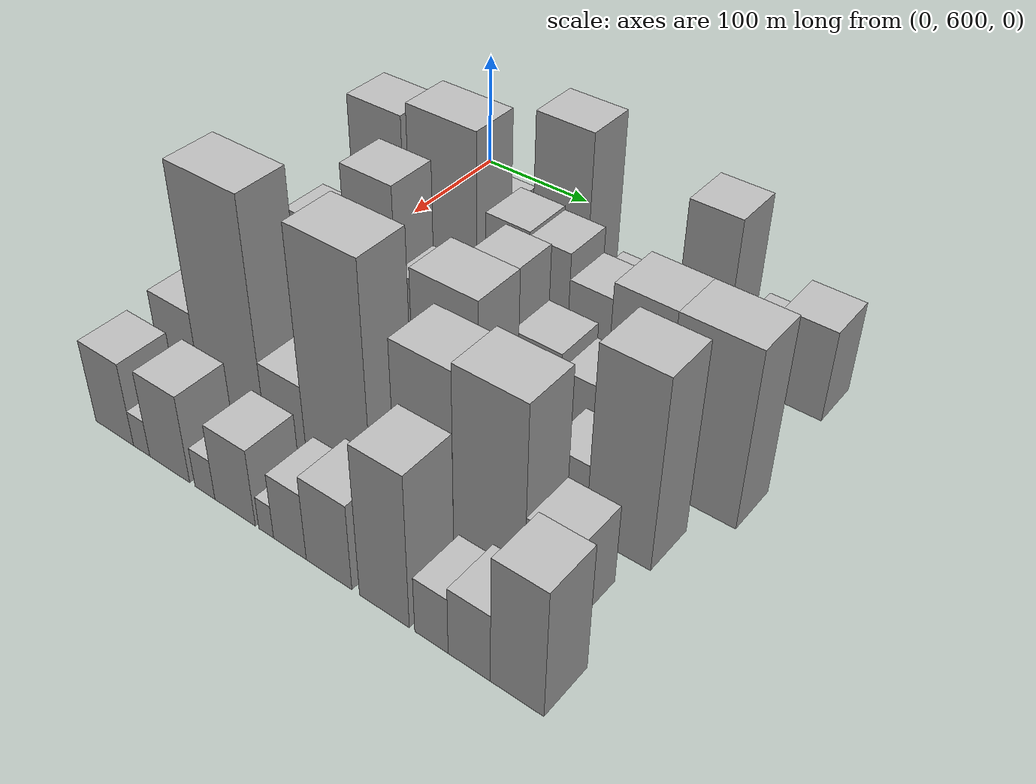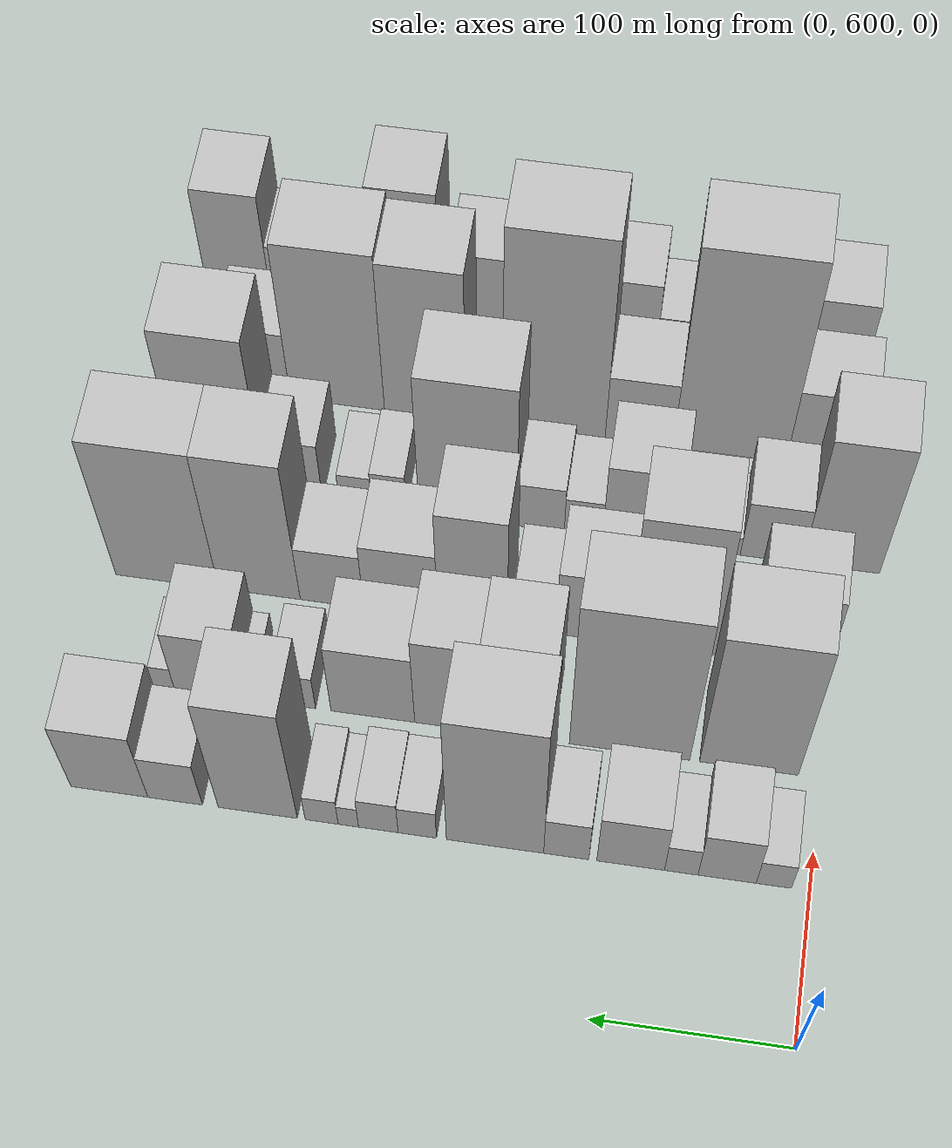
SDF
<sdf version="1.6">
 <world name="default">
  <model name="building_42">
   <static>1</static>
   <pose>100.0000 618.0073 0 0.000000 0.000000 0.000000</pose>
   <link name="link">
    <pose>0 0 15.00 0 0 0</pose>
    <collision name="collision"><geometry><box><size>40.0000 17.5100 30.0000</size></box></geometry></collision>
    <visual name="visual">
     <cast_shadows>0</cast_shadows>
     <geometry><box><size>40.0000 17.5100 30.0000</size></box></geometry>
     <material>
      <script>
       <uri>model://HANNAS_wall/materials/scripts</uri>
       <uri>model://HANNAS_wall/materials/textures</uri>
       <name>vrc/HANNAS_wall</name>
      </script>
     </material>
    </visual>
   </link>
  </model>
  <model name="building_43">
   <static>1</static>
   <pose>100.0000 641.1890 0 0.000000 0.000000 0.000000</pose>
   <link name="link">
    <pose>0 0 27.00 0 0 0</pose>
    <collision name="collision"><geometry><box><size>40.0000 28.8534 54.0000</size></box></geometry></collision>
    <visual name="visual">
     <cast_shadows>0</cast_shadows>
     <geometry><box><size>40.0000 28.8534 54.0000</size></box></geometry>
     <material>
      <script>
       <uri>model://HANNAS_wall/materials/scripts</uri>
       <uri>model://HANNAS_wall/materials/textures</uri>
       <name>vrc/HANNAS_wall</name>
      </script>
     </material>
    </visual>
   </link>
  </model>
  <model name="building_44">
   <static>1</static>
   <pose>100.0000 663.9546 0 0.000000 0.000000 0.000000</pose>
   <link name="link">
    <pose>0 0 16.50 0 0 0</pose>
    <collision name="collision"><geometry><box><size>40.0000 16.6778 33.0000</size></box></geometry></collision>
    <visual name="visual">
     <cast_shadows>0</cast_shadows>
     <geometry><box><size>40.0000 16.6778 33.0000</size></box></geometry>
     <material>
      <script>
       <uri>model://HANNAS_wall/materials/scripts</uri>
       <uri>model://HANNAS_wall/materials/textures</uri>
       <name>vrc/HANNAS_wall</name>
      </script>
     </material>
    </visual>
   </link>
  </model>
  <model name="building_45">
   <static>1</static>
   <pose>100.0000 689.1962 0 0.000000 0.000000 0.000000</pose>
   <link name="link">
    <pose>0 0 28.50 0 0 0</pose>
    <collision name="collision"><geometry><box><size>40.0000 33.8055 57.0000</size></box></geometry></collision>
    <visual name="visual">
     <cast_shadows>0</cast_shadows>
     <geometry><box><size>40.0000 33.8055 57.0000</size></box></geometry>
     <material>
      <script>
       <uri>model://HANNAS_wall/materials/scripts</uri>
       <uri>model://HANNAS_wall/materials/textures</uri>
       <name>vrc/HANNAS_wall</name>
      </script>
     </material>
    </visual>
   </link>
  </model>
  <model name="building_46">
   <static>1</static>
   <pose>100.0000 721.4115 0 0.000000 0.000000 0.000000</pose>
   <link name="link">
    <pose>0 0 22.50 0 0 0</pose>
    <collision name="collision"><geometry><box><size>40.0000 22.6251 45.0000</size></box></geometry></collision>
    <visual name="visual">
     <cast_shadows>0</cast_shadows>
     <geometry><box><size>40.0000 22.6251 45.0000</size></box></geometry>
     <material>
      <script>
       <uri>model://HANNAS_wall/materials/scripts</uri>
       <uri>model://HANNAS_wall/materials/textures</uri>
       <name>vrc/HANNAS_wall</name>
      </script>
     </material>
    </visual>
   </link>
  </model>
  <model name="building_47">
   <static>1</static>
   <pose>100.0000 757.1691 0 0.000000 0.000000 0.000000</pose>
   <link name="link">
    <pose>0 0 75.00 0 0 0</pose>
    <collision name="collision"><geometry><box><size>40.0000 48.8902 150.0000</size></box></geometry></collision>
    <visual name="visual">
     <cast_shadows>0</cast_shadows>
     <geometry><box><size>40.0000 48.8902 150.0000</size></box></geometry>
     <material>
      <script>
       <uri>model://HANNAS_wall/materials/scripts</uri>
       <uri>model://HANNAS_wall/materials/textures</uri>
       <name>vrc/HANNAS_wall</name>
      </script>
     </material>
    </visual>
   </link>
  </model>
  <model name="building_48">
   <static>1</static>
   <pose>100.0000 796.2961 0 0.000000 0.000000 0.000000</pose>
   <link name="link">
    <pose>0 0 16.50 0 0 0</pose>
    <collision name="collision"><geometry><box><size>40.0000 19.3638 33.0000</size></box></geometry></collision>
    <visual name="visual">
     <cast_shadows>0</cast_shadows>
     <geometry><box><size>40.0000 19.3638 33.0000</size></box></geometry>
     <material>
      <script>
       <uri>model://HANNAS_wall/materials/scripts</uri>
       <uri>model://HANNAS_wall/materials/textures</uri>
       <name>vrc/HANNAS_wall</name>
      </script>
     </material>
    </visual>
   </link>
  </model>
  <model name="building_49">
   <static>1</static>
   <pose>100.0000 816.0017 0 0.000000 0.000000 0.000000</pose>
   <link name="link">
    <pose>0 0 18.00 0 0 0</pose>
    <collision name="collision"><geometry><box><size>40.0000 20.0474 36.0000</size></box></geometry></collision>
    <visual name="visual">
     <cast_shadows>0</cast_shadows>
     <geometry><box><size>40.0000 20.0474 36.0000</size></box></geometry>
     <material>
      <script>
       <uri>model://HANNAS_wall/materials/scripts</uri>
       <uri>model://HANNAS_wall/materials/textures</uri>
       <name>vrc/HANNAS_wall</name>
      </script>
     </material>
    </visual>
   </link>
  </model>
  <model name="building_50">
   <static>1</static>
   <pose>100.0000 831.1819 0 0.000000 0.000000 0.000000</pose>
   <link name="link">
    <pose>0 0 12.00 0 0 0</pose>
    <collision name="collision"><geometry><box><size>40.0000 10.3131 24.0000</size></box></geometry></collision>
    <visual name="visual">
     <cast_shadows>0</cast_shadows>
     <geometry><box><size>40.0000 10.3131 24.0000</size></box></geometry>
     <material>
      <script>
       <uri>model://HANNAS_wall/materials/scripts</uri>
       <uri>model://HANNAS_wall/materials/textures</uri>
       <name>vrc/HANNAS_wall</name>
      </script>
     </material>
    </visual>
   </link>
  </model>
  <model name="building_51">
   <static>1</static>
   <pose>100.0000 844.7251 0 0.000000 0.000000 0.000000</pose>
   <link name="link">
    <pose>0 0 15.00 0 0 0</pose>
    <collision name="collision"><geometry><box><size>40.0000 16.7733 30.0000</size></box></geometry></collision>
    <visual name="visual">
     <cast_shadows>0</cast_shadows>
     <geometry><box><size>40.0000 16.7733 30.0000</size></box></geometry>
     <material>
      <script>
       <uri>model://HANNAS_wall/materials/scripts</uri>
       <uri>model://HANNAS_wall/materials/textures</uri>
       <name>vrc/HANNAS_wall</name>
      </script>
     </material>
    </visual>
   </link>
  </model>
  <model name="building_52">
   <static>1</static>
   <pose>100.0000 877.3038 0 0.000000 0.000000 0.000000</pose>
   <link name="link">
    <pose>0 0 64.50 0 0 0</pose>
    <collision name="collision"><geometry><box><size>40.0000 40.3842 129.0000</size></box></geometry></collision>
    <visual name="visual">
     <cast_shadows>0</cast_shadows>
     <geometry><box><size>40.0000 40.3842 129.0000</size></box></geometry>
     <material>
      <script>
       <uri>model://HANNAS_wall/materials/scripts</uri>
       <uri>model://HANNAS_wall/materials/textures</uri>
       <name>vrc/HANNAS_wall</name>
      </script>
     </material>
    </visual>
   </link>
  </model>
  <model name="building_53">
   <static>1</static>
   <pose>100.0000 919.4851 0 0.000000 0.000000 0.000000</pose>
   <link name="link">
    <pose>0 0 25.50 0 0 0</pose>
    <collision name="collision"><geometry><box><size>40.0000 27.9783 51.0000</size></box></geometry></collision>
    <visual name="visual">
     <cast_shadows>0</cast_shadows>
     <geometry><box><size>40.0000 27.9783 51.0000</size></box></geometry>
     <material>
      <script>
       <uri>model://HANNAS_wall/materials/scripts</uri>
       <uri>model://HANNAS_wall/materials/textures</uri>
       <name>vrc/HANNAS_wall</name>
      </script>
     </material>
    </visual>
   </link>
  </model>
  <model name="building_54">
   <static>1</static>
   <pose>100.0000 953.2987 0 0.000000 0.000000 0.000000</pose>
   <link name="link">
    <pose>0 0 37.50 0 0 0</pose>
    <collision name="collision"><geometry><box><size>40.0000 39.6489 75.0000</size></box></geometry></collision>
    <visual name="visual">
     <cast_shadows>0</cast_shadows>
     <geometry><box><size>40.0000 39.6489 75.0000</size></box></geometry>
     <material>
      <script>
       <uri>model://HANNAS_wall/materials/scripts</uri>
       <uri>model://HANNAS_wall/materials/textures</uri>
       <name>vrc/HANNAS_wall</name>
      </script>
     </material>
    </visual>
   </link>
  </model>
  <model name="building_93">
   <static>1</static>
   <pose>160.0000 636.2026 0 0.000000 0.000000 0.000000</pose>
   <link name="link">
    <pose>0 0 73.50 0 0 0</pose>
    <collision name="collision"><geometry><box><size>40.0000 50.1381 147.0000</size></box></geometry></collision>
    <visual name="visual">
     <cast_shadows>0</cast_shadows>
     <geometry><box><size>40.0000 50.1381 147.0000</size></box></geometry>
     <material>
      <script>
       <uri>model://HANNAS_wall/materials/scripts</uri>
       <uri>model://HANNAS_wall/materials/textures</uri>
       <name>vrc/HANNAS_wall</name>
      </script>
     </material>
    </visual>
   </link>
  </model>
  <model name="building_94">
   <static>1</static>
   <pose>160.0000 697.0706 0 0.000000 0.000000 0.000000</pose>
   <link name="link">
    <pose>0 0 79.50 0 0 0</pose>
    <collision name="collision"><geometry><box><size>40.0000 61.5979 159.0000</size></box></geometry></collision>
    <visual name="visual">
     <cast_shadows>0</cast_shadows>
     <geometry><box><size>40.0000 61.5979 159.0000</size></box></geometry>
     <material>
      <script>
       <uri>model://HANNAS_wall/materials/scripts</uri>
       <uri>model://HANNAS_wall/materials/textures</uri>
       <name>vrc/HANNAS_wall</name>
      </script>
     </material>
    </visual>
   </link>
  </model>
  <model name="building_95">
   <static>1</static>
   <pose>160.0000 754.8057 0 0.000000 0.000000 0.000000</pose>
   <link name="link">
    <pose>0 0 49.50 0 0 0</pose>
    <collision name="collision"><geometry><box><size>40.0000 37.8722 99.0000</size></box></geometry></collision>
    <visual name="visual">
     <cast_shadows>0</cast_shadows>
     <geometry><box><size>40.0000 37.8722 99.0000</size></box></geometry>
     <material>
      <script>
       <uri>model://HANNAS_wall/materials/scripts</uri>
       <uri>model://HANNAS_wall/materials/textures</uri>
       <name>vrc/HANNAS_wall</name>
      </script>
     </material>
    </visual>
   </link>
  </model>
  <model name="building_96">
   <static>1</static>
   <pose>160.0000 790.6017 0 0.000000 0.000000 0.000000</pose>
   <link name="link">
    <pose>0 0 48.00 0 0 0</pose>
    <collision name="collision"><geometry><box><size>40.0000 33.7200 96.0000</size></box></geometry></collision>
    <visual name="visual">
     <cast_shadows>0</cast_shadows>
     <geometry><box><size>40.0000 33.7200 96.0000</size></box></geometry>
     <material>
      <script>
       <uri>model://HANNAS_wall/materials/scripts</uri>
       <uri>model://HANNAS_wall/materials/textures</uri>
       <name>vrc/HANNAS_wall</name>
      </script>
     </material>
    </visual>
   </link>
  </model>
  <model name="building_97">
   <static>1</static>
   <pose>160.0000 829.1839 0 0.000000 0.000000 0.000000</pose>
   <link name="link">
    <pose>0 0 37.50 0 0 0</pose>
    <collision name="collision"><geometry><box><size>40.0000 43.4444 75.0000</size></box></geometry></collision>
    <visual name="visual">
     <cast_shadows>0</cast_shadows>
     <geometry><box><size>40.0000 43.4444 75.0000</size></box></geometry>
     <material>
      <script>
       <uri>model://HANNAS_wall/materials/scripts</uri>
       <uri>model://HANNAS_wall/materials/textures</uri>
       <name>vrc/HANNAS_wall</name>
      </script>
     </material>
    </visual>
   </link>
  </model>
  <model name="building_98">
   <static>1</static>
   <pose>160.0000 869.4448 0 0.000000 0.000000 0.000000</pose>
   <link name="link">
    <pose>0 0 18.00 0 0 0</pose>
    <collision name="collision"><geometry><box><size>40.0000 21.0774 36.0000</size></box></geometry></collision>
    <visual name="visual">
     <cast_shadows>0</cast_shadows>
     <geometry><box><size>40.0000 21.0774 36.0000</size></box></geometry>
     <material>
      <script>
       <uri>model://HANNAS_wall/materials/scripts</uri>
       <uri>model://HANNAS_wall/materials/textures</uri>
       <name>vrc/HANNAS_wall</name>
      </script>
     </material>
    </visual>
   </link>
  </model>
  <model name="building_99">
   <static>1</static>
   <pose>160.0000 893.3286 0 0.000000 0.000000 0.000000</pose>
   <link name="link">
    <pose>0 0 10.50 0 0 0</pose>
    <collision name="collision"><geometry><box><size>40.0000 8.6901 21.0000</size></box></geometry></collision>
    <visual name="visual">
     <cast_shadows>0</cast_shadows>
     <geometry><box><size>40.0000 8.6901 21.0000</size></box></geometry>
     <material>
      <script>
       <uri>model://HANNAS_wall/materials/scripts</uri>
       <uri>model://HANNAS_wall/materials/textures</uri>
       <name>vrc/HANNAS_wall</name>
      </script>
     </material>
    </visual>
   </link>
  </model>
  <model name="building_100">
   <static>1</static>
   <pose>160.0000 915.2253 0 0.000000 0.000000 0.000000</pose>
   <link name="link">
    <pose>0 0 33.00 0 0 0</pose>
    <collision name="collision"><geometry><box><size>40.0000 35.1033 66.0000</size></box></geometry></collision>
    <visual name="visual">
     <cast_shadows>0</cast_shadows>
     <geometry><box><size>40.0000 35.1033 66.0000</size></box></geometry>
     <material>
      <script>
       <uri>model://HANNAS_wall/materials/scripts</uri>
       <uri>model://HANNAS_wall/materials/textures</uri>
       <name>vrc/HANNAS_wall</name>
      </script>
     </material>
    </visual>
   </link>
  </model>
  <model name="building_101">
   <static>1</static>
   <pose>160.0000 938.3614 0 0.000000 0.000000 0.000000</pose>
   <link name="link">
    <pose>0 0 12.00 0 0 0</pose>
    <collision name="collision"><geometry><box><size>40.0000 11.1689 24.0000</size></box></geometry></collision>
    <visual name="visual">
     <cast_shadows>0</cast_shadows>
     <geometry><box><size>40.0000 11.1689 24.0000</size></box></geometry>
     <material>
      <script>
       <uri>model://HANNAS_wall/materials/scripts</uri>
       <uri>model://HANNAS_wall/materials/textures</uri>
       <name>vrc/HANNAS_wall</name>
      </script>
     </material>
    </visual>
   </link>
  </model>
  <model name="building_145">
   <static>1</static>
   <pose>220.0000 621.5087 0 0.000000 0.000000 0.000000</pose>
   <link name="link">
    <pose>0 0 39.00 0 0 0</pose>
    <collision name="collision"><geometry><box><size>40.0000 40.9243 78.0000</size></box></geometry></collision>
    <visual name="visual">
     <cast_shadows>0</cast_shadows>
     <geometry><box><size>40.0000 40.9243 78.0000</size></box></geometry>
     <material>
      <script>
       <uri>model://HANNAS_wall/materials/scripts</uri>
       <uri>model://HANNAS_wall/materials/textures</uri>
       <name>vrc/HANNAS_wall</name>
      </script>
     </material>
    </visual>
   </link>
  </model>
  <model name="building_146">
   <static>1</static>
   <pose>220.0000 650.7561 0 0.000000 0.000000 0.000000</pose>
   <link name="link">
    <pose>0 0 15.00 0 0 0</pose>
    <collision name="collision"><geometry><box><size>40.0000 17.5705 30.0000</size></box></geometry></collision>
    <visual name="visual">
     <cast_shadows>0</cast_shadows>
     <geometry><box><size>40.0000 17.5705 30.0000</size></box></geometry>
     <material>
      <script>
       <uri>model://HANNAS_wall/materials/scripts</uri>
       <uri>model://HANNAS_wall/materials/textures</uri>
       <name>vrc/HANNAS_wall</name>
      </script>
     </material>
    </visual>
   </link>
  </model>
  <model name="building_147">
   <static>1</static>
   <pose>220.0000 682.3971 0 0.000000 0.000000 0.000000</pose>
   <link name="link">
    <pose>0 0 69.00 0 0 0</pose>
    <collision name="collision"><geometry><box><size>40.0000 45.7116 138.0000</size></box></geometry></collision>
    <visual name="visual">
     <cast_shadows>0</cast_shadows>
     <geometry><box><size>40.0000 45.7116 138.0000</size></box></geometry>
     <material>
      <script>
       <uri>model://HANNAS_wall/materials/scripts</uri>
       <uri>model://HANNAS_wall/materials/textures</uri>
       <name>vrc/HANNAS_wall</name>
      </script>
     </material>
    </visual>
   </link>
  </model>
  <model name="building_148">
   <static>1</static>
   <pose>220.0000 724.0211 0 0.000000 0.000000 0.000000</pose>
   <link name="link">
    <pose>0 0 34.50 0 0 0</pose>
    <collision name="collision"><geometry><box><size>40.0000 37.5365 69.0000</size></box></geometry></collision>
    <visual name="visual">
     <cast_shadows>0</cast_shadows>
     <geometry><box><size>40.0000 37.5365 69.0000</size></box></geometry>
     <material>
      <script>
       <uri>model://HANNAS_wall/materials/scripts</uri>
       <uri>model://HANNAS_wall/materials/textures</uri>
       <name>vrc/HANNAS_wall</name>
      </script>
     </material>
    </visual>
   </link>
  </model>
  <model name="building_149">
   <static>1</static>
   <pose>220.0000 754.1148 0 0.000000 0.000000 0.000000</pose>
   <link name="link">
    <pose>0 0 21.00 0 0 0</pose>
    <collision name="collision"><geometry><box><size>40.0000 22.6509 42.0000</size></box></geometry></collision>
    <visual name="visual">
     <cast_shadows>0</cast_shadows>
     <geometry><box><size>40.0000 22.6509 42.0000</size></box></geometry>
     <material>
      <script>
       <uri>model://HANNAS_wall/materials/scripts</uri>
       <uri>model://HANNAS_wall/materials/textures</uri>
       <name>vrc/HANNAS_wall</name>
      </script>
     </material>
    </visual>
   </link>
  </model>
  <model name="building_150">
   <static>1</static>
   <pose>220.0000 786.8052 0 0.000000 0.000000 0.000000</pose>
   <link name="link">
    <pose>0 0 57.00 0 0 0</pose>
    <collision name="collision"><geometry><box><size>40.0000 36.7300 114.0000</size></box></geometry></collision>
    <visual name="visual">
     <cast_shadows>0</cast_shadows>
     <geometry><box><size>40.0000 36.7300 114.0000</size></box></geometry>
     <material>
      <script>
       <uri>model://HANNAS_wall/materials/scripts</uri>
       <uri>model://HANNAS_wall/materials/textures</uri>
       <name>vrc/HANNAS_wall</name>
      </script>
     </material>
    </visual>
   </link>
  </model>
  <model name="building_151">
   <static>1</static>
   <pose>220.0000 824.7797 0 0.000000 0.000000 0.000000</pose>
   <link name="link">
    <pose>0 0 34.50 0 0 0</pose>
    <collision name="collision"><geometry><box><size>40.0000 39.2189 69.0000</size></box></geometry></collision>
    <visual name="visual">
     <cast_shadows>0</cast_shadows>
     <geometry><box><size>40.0000 39.2189 69.0000</size></box></geometry>
     <material>
      <script>
       <uri>model://HANNAS_wall/materials/scripts</uri>
       <uri>model://HANNAS_wall/materials/textures</uri>
       <name>vrc/HANNAS_wall</name>
      </script>
     </material>
    </visual>
   </link>
  </model>
  <model name="building_152">
   <static>1</static>
   <pose>220.0000 861.2721 0 0.000000 0.000000 0.000000</pose>
   <link name="link">
    <pose>0 0 28.50 0 0 0</pose>
    <collision name="collision"><geometry><box><size>40.0000 33.7660 57.0000</size></box></geometry></collision>
    <visual name="visual">
     <cast_shadows>0</cast_shadows>
     <geometry><box><size>40.0000 33.7660 57.0000</size></box></geometry>
     <material>
      <script>
       <uri>model://HANNAS_wall/materials/scripts</uri>
       <uri>model://HANNAS_wall/materials/textures</uri>
       <name>vrc/HANNAS_wall</name>
      </script>
     </material>
    </visual>
   </link>
  </model>
  <model name="building_153">
   <static>1</static>
   <pose>220.0000 899.9863 0 0.000000 0.000000 0.000000</pose>
   <link name="link">
    <pose>0 0 70.50 0 0 0</pose>
    <collision name="collision"><geometry><box><size>40.0000 43.6624 141.0000</size></box></geometry></collision>
    <visual name="visual">
     <cast_shadows>0</cast_shadows>
     <geometry><box><size>40.0000 43.6624 141.0000</size></box></geometry>
     <material>
      <script>
       <uri>model://HANNAS_wall/materials/scripts</uri>
       <uri>model://HANNAS_wall/materials/textures</uri>
       <name>vrc/HANNAS_wall</name>
      </script>
     </material>
    </visual>
   </link>
  </model>
  <model name="building_154">
   <static>1</static>
   <pose>220.0000 949.4680 0 0.000000 0.000000 0.000000</pose>
   <link name="link">
    <pose>0 0 70.50 0 0 0</pose>
    <collision name="collision"><geometry><box><size>40.0000 55.3010 141.0000</size></box></geometry></collision>
    <visual name="visual">
     <cast_shadows>0</cast_shadows>
     <geometry><box><size>40.0000 55.3010 141.0000</size></box></geometry>
     <material>
      <script>
       <uri>model://HANNAS_wall/materials/scripts</uri>
       <uri>model://HANNAS_wall/materials/textures</uri>
       <name>vrc/HANNAS_wall</name>
      </script>
     </material>
    </visual>
   </link>
  </model>
  <model name="building_198">
   <static>1</static>
   <pose>280.0000 599.1613 0 0.000000 0.000000 0.000000</pose>
   <link name="link">
    <pose>0 0 64.50 0 0 0</pose>
    <collision name="collision"><geometry><box><size>40.0000 40.9980 129.0000</size></box></geometry></collision>
    <visual name="visual">
     <cast_shadows>0</cast_shadows>
     <geometry><box><size>40.0000 40.9980 129.0000</size></box></geometry>
     <material>
      <script>
       <uri>model://HANNAS_wall/materials/scripts</uri>
       <uri>model://HANNAS_wall/materials/textures</uri>
       <name>vrc/HANNAS_wall</name>
      </script>
     </material>
    </visual>
   </link>
  </model>
  <model name="building_199">
   <static>1</static>
   <pose>280.0000 636.0744 0 0.000000 0.000000 0.000000</pose>
   <link name="link">
    <pose>0 0 28.50 0 0 0</pose>
    <collision name="collision"><geometry><box><size>40.0000 32.8284 57.0000</size></box></geometry></collision>
    <visual name="visual">
     <cast_shadows>0</cast_shadows>
     <geometry><box><size>40.0000 32.8284 57.0000</size></box></geometry>
     <material>
      <script>
       <uri>model://HANNAS_wall/materials/scripts</uri>
       <uri>model://HANNAS_wall/materials/textures</uri>
       <name>vrc/HANNAS_wall</name>
      </script>
     </material>
    </visual>
   </link>
  </model>
  <model name="building_200">
   <static>1</static>
   <pose>280.0000 656.9201 0 0.000000 0.000000 0.000000</pose>
   <link name="link">
    <pose>0 0 9.00 0 0 0</pose>
    <collision name="collision"><geometry><box><size>40.0000 8.8629 18.0000</size></box></geometry></collision>
    <visual name="visual">
     <cast_shadows>0</cast_shadows>
     <geometry><box><size>40.0000 8.8629 18.0000</size></box></geometry>
     <material>
      <script>
       <uri>model://HANNAS_wall/materials/scripts</uri>
       <uri>model://HANNAS_wall/materials/textures</uri>
       <name>vrc/HANNAS_wall</name>
      </script>
     </material>
    </visual>
   </link>
  </model>
  <model name="building_201">
   <static>1</static>
   <pose>280.0000 670.2073 0 0.000000 0.000000 0.000000</pose>
   <link name="link">
    <pose>0 0 16.50 0 0 0</pose>
    <collision name="collision"><geometry><box><size>40.0000 17.7117 33.0000</size></box></geometry></collision>
    <visual name="visual">
     <cast_shadows>0</cast_shadows>
     <geometry><box><size>40.0000 17.7117 33.0000</size></box></geometry>
     <material>
      <script>
       <uri>model://HANNAS_wall/materials/scripts</uri>
       <uri>model://HANNAS_wall/materials/textures</uri>
       <name>vrc/HANNAS_wall</name>
      </script>
     </material>
    </visual>
   </link>
  </model>
  <model name="building_202">
   <static>1</static>
   <pose>280.0000 705.9889 0 0.000000 0.000000 0.000000</pose>
   <link name="link">
    <pose>0 0 37.50 0 0 0</pose>
    <collision name="collision"><geometry><box><size>40.0000 39.8515 75.0000</size></box></geometry></collision>
    <visual name="visual">
     <cast_shadows>0</cast_shadows>
     <geometry><box><size>40.0000 39.8515 75.0000</size></box></geometry>
     <material>
      <script>
       <uri>model://HANNAS_wall/materials/scripts</uri>
       <uri>model://HANNAS_wall/materials/textures</uri>
       <name>vrc/HANNAS_wall</name>
      </script>
     </material>
    </visual>
   </link>
  </model>
  <model name="building_203">
   <static>1</static>
   <pose>280.0000 736.2153 0 0.000000 0.000000 0.000000</pose>
   <link name="link">
    <pose>0 0 18.00 0 0 0</pose>
    <collision name="collision"><geometry><box><size>40.0000 20.6012 36.0000</size></box></geometry></collision>
    <visual name="visual">
     <cast_shadows>0</cast_shadows>
     <geometry><box><size>40.0000 20.6012 36.0000</size></box></geometry>
     <material>
      <script>
       <uri>model://HANNAS_wall/materials/scripts</uri>
       <uri>model://HANNAS_wall/materials/textures</uri>
       <name>vrc/HANNAS_wall</name>
      </script>
     </material>
    </visual>
   </link>
  </model>
  <model name="building_204">
   <static>1</static>
   <pose>280.0000 759.2845 0 0.000000 0.000000 0.000000</pose>
   <link name="link">
    <pose>0 0 22.50 0 0 0</pose>
    <collision name="collision"><geometry><box><size>40.0000 25.5373 45.0000</size></box></geometry></collision>
    <visual name="visual">
     <cast_shadows>0</cast_shadows>
     <geometry><box><size>40.0000 25.5373 45.0000</size></box></geometry>
     <material>
      <script>
       <uri>model://HANNAS_wall/materials/scripts</uri>
       <uri>model://HANNAS_wall/materials/textures</uri>
       <name>vrc/HANNAS_wall</name>
      </script>
     </material>
    </visual>
   </link>
  </model>
  <model name="building_205">
   <static>1</static>
   <pose>280.0000 798.4730 0 0.000000 0.000000 0.000000</pose>
   <link name="link">
    <pose>0 0 69.00 0 0 0</pose>
    <collision name="collision"><geometry><box><size>40.0000 52.8398 138.0000</size></box></geometry></collision>
    <visual name="visual">
     <cast_shadows>0</cast_shadows>
     <geometry><box><size>40.0000 52.8398 138.0000</size></box></geometry>
     <material>
      <script>
       <uri>model://HANNAS_wall/materials/scripts</uri>
       <uri>model://HANNAS_wall/materials/textures</uri>
       <name>vrc/HANNAS_wall</name>
      </script>
     </material>
    </visual>
   </link>
  </model>
  <model name="building_206">
   <static>1</static>
   <pose>280.0000 841.2445 0 0.000000 0.000000 0.000000</pose>
   <link name="link">
    <pose>0 0 18.00 0 0 0</pose>
    <collision name="collision"><geometry><box><size>40.0000 18.7033 36.0000</size></box></geometry></collision>
    <visual name="visual">
     <cast_shadows>0</cast_shadows>
     <geometry><box><size>40.0000 18.7033 36.0000</size></box></geometry>
     <material>
      <script>
       <uri>model://HANNAS_wall/materials/scripts</uri>
       <uri>model://HANNAS_wall/materials/textures</uri>
       <name>vrc/HANNAS_wall</name>
      </script>
     </material>
    </visual>
   </link>
  </model>
  <model name="building_207">
   <static>1</static>
   <pose>280.0000 859.4446 0 0.000000 0.000000 0.000000</pose>
   <link name="link">
    <pose>0 0 15.00 0 0 0</pose>
    <collision name="collision"><geometry><box><size>40.0000 17.6968 30.0000</size></box></geometry></collision>
    <visual name="visual">
     <cast_shadows>0</cast_shadows>
     <geometry><box><size>40.0000 17.6968 30.0000</size></box></geometry>
     <material>
      <script>
       <uri>model://HANNAS_wall/materials/scripts</uri>
       <uri>model://HANNAS_wall/materials/textures</uri>
       <name>vrc/HANNAS_wall</name>
      </script>
     </material>
    </visual>
   </link>
  </model>
  <model name="building_208">
   <static>1</static>
   <pose>280.0000 892.5521 0 0.000000 0.000000 0.000000</pose>
   <link name="link">
    <pose>0 0 28.50 0 0 0</pose>
    <collision name="collision"><geometry><box><size>40.0000 30.5182 57.0000</size></box></geometry></collision>
    <visual name="visual">
     <cast_shadows>0</cast_shadows>
     <geometry><box><size>40.0000 30.5182 57.0000</size></box></geometry>
     <material>
      <script>
       <uri>model://HANNAS_wall/materials/scripts</uri>
       <uri>model://HANNAS_wall/materials/textures</uri>
       <name>vrc/HANNAS_wall</name>
      </script>
     </material>
    </visual>
   </link>
  </model>
  <model name="building_209">
   <static>1</static>
   <pose>280.0000 931.0610 0 0.000000 0.000000 0.000000</pose>
   <link name="link">
    <pose>0 0 75.00 0 0 0</pose>
    <collision name="collision"><geometry><box><size>40.0000 46.4995 150.0000</size></box></geometry></collision>
    <visual name="visual">
     <cast_shadows>0</cast_shadows>
     <geometry><box><size>40.0000 46.4995 150.0000</size></box></geometry>
     <material>
      <script>
       <uri>model://HANNAS_wall/materials/scripts</uri>
       <uri>model://HANNAS_wall/materials/textures</uri>
       <name>vrc/HANNAS_wall</name>
      </script>
     </material>
    </visual>
   </link>
  </model>
  <model name="building_254">
   <static>1</static>
   <pose>340.0000 613.1773 0 0.000000 0.000000 0.000000</pose>
   <link name="link">
    <pose>0 0 36.00 0 0 0</pose>
    <collision name="collision"><geometry><box><size>40.0000 40.5488 72.0000</size></box></geometry></collision>
    <visual name="visual">
     <cast_shadows>0</cast_shadows>
     <geometry><box><size>40.0000 40.5488 72.0000</size></box></geometry>
     <material>
      <script>
       <uri>model://HANNAS_wall/materials/scripts</uri>
       <uri>model://HANNAS_wall/materials/textures</uri>
       <name>vrc/HANNAS_wall</name>
      </script>
     </material>
    </visual>
   </link>
  </model>
  <model name="building_255">
   <static>1</static>
   <pose>340.0000 664.2156 0 0.000000 0.000000 0.000000</pose>
   <link name="link">
    <pose>0 0 94.50 0 0 0</pose>
    <collision name="collision"><geometry><box><size>40.0000 61.5278 189.0000</size></box></geometry></collision>
    <visual name="visual">
     <cast_shadows>0</cast_shadows>
     <geometry><box><size>40.0000 61.5278 189.0000</size></box></geometry>
     <material>
      <script>
       <uri>model://HANNAS_wall/materials/scripts</uri>
       <uri>model://HANNAS_wall/materials/textures</uri>
       <name>vrc/HANNAS_wall</name>
      </script>
     </material>
    </visual>
   </link>
  </model>
  <model name="building_256">
   <static>1</static>
   <pose>340.0000 713.5831 0 0.000000 0.000000 0.000000</pose>
   <link name="link">
    <pose>0 0 31.50 0 0 0</pose>
    <collision name="collision"><geometry><box><size>40.0000 37.2072 63.0000</size></box></geometry></collision>
    <visual name="visual">
     <cast_shadows>0</cast_shadows>
     <geometry><box><size>40.0000 37.2072 63.0000</size></box></geometry>
     <material>
      <script>
       <uri>model://HANNAS_wall/materials/scripts</uri>
       <uri>model://HANNAS_wall/materials/textures</uri>
       <name>vrc/HANNAS_wall</name>
      </script>
     </material>
    </visual>
   </link>
  </model>
  <model name="building_257">
   <static>1</static>
   <pose>340.0000 760.3806 0 0.000000 0.000000 0.000000</pose>
   <link name="link">
    <pose>0 0 93.00 0 0 0</pose>
    <collision name="collision"><geometry><box><size>40.0000 56.3877 186.0000</size></box></geometry></collision>
    <visual name="visual">
     <cast_shadows>0</cast_shadows>
     <geometry><box><size>40.0000 56.3877 186.0000</size></box></geometry>
     <material>
      <script>
       <uri>model://HANNAS_wall/materials/scripts</uri>
       <uri>model://HANNAS_wall/materials/textures</uri>
       <name>vrc/HANNAS_wall</name>
      </script>
     </material>
    </visual>
   </link>
  </model>
  <model name="building_258">
   <static>1</static>
   <pose>340.0000 798.6332 0 0.000000 0.000000 0.000000</pose>
   <link name="link">
    <pose>0 0 18.00 0 0 0</pose>
    <collision name="collision"><geometry><box><size>40.0000 20.1177 36.0000</size></box></geometry></collision>
    <visual name="visual">
     <cast_shadows>0</cast_shadows>
     <geometry><box><size>40.0000 20.1177 36.0000</size></box></geometry>
     <material>
      <script>
       <uri>model://HANNAS_wall/materials/scripts</uri>
       <uri>model://HANNAS_wall/materials/textures</uri>
       <name>vrc/HANNAS_wall</name>
      </script>
     </material>
    </visual>
   </link>
  </model>
  <model name="building_259">
   <static>1</static>
   <pose>340.0000 831.2580 0 0.000000 0.000000 0.000000</pose>
   <link name="link">
    <pose>0 0 70.50 0 0 0</pose>
    <collision name="collision"><geometry><box><size>40.0000 45.1319 141.0000</size></box></geometry></collision>
    <visual name="visual">
     <cast_shadows>0</cast_shadows>
     <geometry><box><size>40.0000 45.1319 141.0000</size></box></geometry>
     <material>
      <script>
       <uri>model://HANNAS_wall/materials/scripts</uri>
       <uri>model://HANNAS_wall/materials/textures</uri>
       <name>vrc/HANNAS_wall</name>
      </script>
     </material>
    </visual>
   </link>
  </model>
  <model name="building_260">
   <static>1</static>
   <pose>340.0000 880.0326 0 0.000000 0.000000 0.000000</pose>
   <link name="link">
    <pose>0 0 73.50 0 0 0</pose>
    <collision name="collision"><geometry><box><size>40.0000 52.4175 147.0000</size></box></geometry></collision>
    <visual name="visual">
     <cast_shadows>0</cast_shadows>
     <geometry><box><size>40.0000 52.4175 147.0000</size></box></geometry>
     <material>
      <script>
       <uri>model://HANNAS_wall/materials/scripts</uri>
       <uri>model://HANNAS_wall/materials/textures</uri>
       <name>vrc/HANNAS_wall</name>
      </script>
     </material>
    </visual>
   </link>
  </model>
  <model name="building_261">
   <static>1</static>
   <pose>340.0000 924.3439 0 0.000000 0.000000 0.000000</pose>
   <link name="link">
    <pose>0 0 31.50 0 0 0</pose>
    <collision name="collision"><geometry><box><size>40.0000 36.2051 63.0000</size></box></geometry></collision>
    <visual name="visual">
     <cast_shadows>0</cast_shadows>
     <geometry><box><size>40.0000 36.2051 63.0000</size></box></geometry>
     <material>
      <script>
       <uri>model://HANNAS_wall/materials/scripts</uri>
       <uri>model://HANNAS_wall/materials/textures</uri>
       <name>vrc/HANNAS_wall</name>
      </script>
     </material>
    </visual>
   </link>
  </model>
  <model name="building_307">
   <static>1</static>
   <pose>400.0000 614.7563 0 0.000000 0.000000 0.000000</pose>
   <link name="link">
    <pose>0 0 34.50 0 0 0</pose>
    <collision name="collision"><geometry><box><size>40.0000 37.9531 69.0000</size></box></geometry></collision>
    <visual name="visual">
     <cast_shadows>0</cast_shadows>
     <geometry><box><size>40.0000 37.9531 69.0000</size></box></geometry>
     <material>
      <script>
       <uri>model://HANNAS_wall/materials/scripts</uri>
       <uri>model://HANNAS_wall/materials/textures</uri>
       <name>vrc/HANNAS_wall</name>
      </script>
     </material>
    </visual>
   </link>
  </model>
  <model name="building_308">
   <static>1</static>
   <pose>400.0000 641.6648 0 0.000000 0.000000 0.000000</pose>
   <link name="link">
    <pose>0 0 15.00 0 0 0</pose>
    <collision name="collision"><geometry><box><size>40.0000 15.8639 30.0000</size></box></geometry></collision>
    <visual name="visual">
     <cast_shadows>0</cast_shadows>
     <geometry><box><size>40.0000 15.8639 30.0000</size></box></geometry>
     <material>
      <script>
       <uri>model://HANNAS_wall/materials/scripts</uri>
       <uri>model://HANNAS_wall/materials/textures</uri>
       <name>vrc/HANNAS_wall</name>
      </script>
     </material>
    </visual>
   </link>
  </model>
  <model name="building_309">
   <static>1</static>
   <pose>400.0000 668.6208 0 0.000000 0.000000 0.000000</pose>
   <link name="link">
    <pose>0 0 36.00 0 0 0</pose>
    <collision name="collision"><geometry><box><size>40.0000 38.0483 72.0000</size></box></geometry></collision>
    <visual name="visual">
     <cast_shadows>0</cast_shadows>
     <geometry><box><size>40.0000 38.0483 72.0000</size></box></geometry>
     <material>
      <script>
       <uri>model://HANNAS_wall/materials/scripts</uri>
       <uri>model://HANNAS_wall/materials/textures</uri>
       <name>vrc/HANNAS_wall</name>
      </script>
     </material>
    </visual>
   </link>
  </model>
  <model name="building_310">
   <static>1</static>
   <pose>400.0000 701.7435 0 0.000000 0.000000 0.000000</pose>
   <link name="link">
    <pose>0 0 16.50 0 0 0</pose>
    <collision name="collision"><geometry><box><size>40.0000 18.1971 33.0000</size></box></geometry></collision>
    <visual name="visual">
     <cast_shadows>0</cast_shadows>
     <geometry><box><size>40.0000 18.1971 33.0000</size></box></geometry>
     <material>
      <script>
       <uri>model://HANNAS_wall/materials/scripts</uri>
       <uri>model://HANNAS_wall/materials/textures</uri>
       <name>vrc/HANNAS_wall</name>
      </script>
     </material>
    </visual>
   </link>
  </model>
  <model name="building_311">
   <static>1</static>
   <pose>400.0000 728.8013 0 0.000000 0.000000 0.000000</pose>
   <link name="link">
    <pose>0 0 31.50 0 0 0</pose>
    <collision name="collision"><geometry><box><size>40.0000 35.9185 63.0000</size></box></geometry></collision>
    <visual name="visual">
     <cast_shadows>0</cast_shadows>
     <geometry><box><size>40.0000 35.9185 63.0000</size></box></geometry>
     <material>
      <script>
       <uri>model://HANNAS_wall/materials/scripts</uri>
       <uri>model://HANNAS_wall/materials/textures</uri>
       <name>vrc/HANNAS_wall</name>
      </script>
     </material>
    </visual>
   </link>
  </model>
  <model name="building_312">
   <static>1</static>
   <pose>400.0000 756.1065 0 0.000000 0.000000 0.000000</pose>
   <link name="link">
    <pose>0 0 13.50 0 0 0</pose>
    <collision name="collision"><geometry><box><size>40.0000 12.6918 27.0000</size></box></geometry></collision>
    <visual name="visual">
     <cast_shadows>0</cast_shadows>
     <geometry><box><size>40.0000 12.6918 27.0000</size></box></geometry>
     <material>
      <script>
       <uri>model://HANNAS_wall/materials/scripts</uri>
       <uri>model://HANNAS_wall/materials/textures</uri>
       <name>vrc/HANNAS_wall</name>
      </script>
     </material>
    </visual>
   </link>
  </model>
  <model name="building_313">
   <static>1</static>
   <pose>400.0000 776.1558 0 0.000000 0.000000 0.000000</pose>
   <link name="link">
    <pose>0 0 27.00 0 0 0</pose>
    <collision name="collision"><geometry><box><size>40.0000 27.4069 54.0000</size></box></geometry></collision>
    <visual name="visual">
     <cast_shadows>0</cast_shadows>
     <geometry><box><size>40.0000 27.4069 54.0000</size></box></geometry>
     <material>
      <script>
       <uri>model://HANNAS_wall/materials/scripts</uri>
       <uri>model://HANNAS_wall/materials/textures</uri>
       <name>vrc/HANNAS_wall</name>
      </script>
     </material>
    </visual>
   </link>
  </model>
  <model name="building_314">
   <static>1</static>
   <pose>400.0000 808.2190 0 0.000000 0.000000 0.000000</pose>
   <link name="link">
    <pose>0 0 34.50 0 0 0</pose>
    <collision name="collision"><geometry><box><size>40.0000 36.7194 69.0000</size></box></geometry></collision>
    <visual name="visual">
     <cast_shadows>0</cast_shadows>
     <geometry><box><size>40.0000 36.7194 69.0000</size></box></geometry>
     <material>
      <script>
       <uri>model://HANNAS_wall/materials/scripts</uri>
       <uri>model://HANNAS_wall/materials/textures</uri>
       <name>vrc/HANNAS_wall</name>
      </script>
     </material>
    </visual>
   </link>
  </model>
  <model name="building_315">
   <static>1</static>
   <pose>400.0000 851.5525 0 0.000000 0.000000 0.000000</pose>
   <link name="link">
    <pose>0 0 60.00 0 0 0</pose>
    <collision name="collision"><geometry><box><size>40.0000 37.9476 120.0000</size></box></geometry></collision>
    <visual name="visual">
     <cast_shadows>0</cast_shadows>
     <geometry><box><size>40.0000 37.9476 120.0000</size></box></geometry>
     <material>
      <script>
       <uri>model://HANNAS_wall/materials/scripts</uri>
       <uri>model://HANNAS_wall/materials/textures</uri>
       <name>vrc/HANNAS_wall</name>
      </script>
     </material>
    </visual>
   </link>
  </model>
  <model name="building_316">
   <static>1</static>
   <pose>400.0000 886.6813 0 0.000000 0.000000 0.000000</pose>
   <link name="link">
    <pose>0 0 22.50 0 0 0</pose>
    <collision name="collision"><geometry><box><size>40.0000 24.3098 45.0000</size></box></geometry></collision>
    <visual name="visual">
     <cast_shadows>0</cast_shadows>
     <geometry><box><size>40.0000 24.3098 45.0000</size></box></geometry>
     <material>
      <script>
       <uri>model://HANNAS_wall/materials/scripts</uri>
       <uri>model://HANNAS_wall/materials/textures</uri>
       <name>vrc/HANNAS_wall</name>
      </script>
     </material>
    </visual>
   </link>
  </model>
  <model name="building_317">
   <static>1</static>
   <pose>400.0000 913.5829 0 0.000000 0.000000 0.000000</pose>
   <link name="link">
    <pose>0 0 27.00 0 0 0</pose>
    <collision name="collision"><geometry><box><size>40.0000 29.4935 54.0000</size></box></geometry></collision>
    <visual name="visual">
     <cast_shadows>0</cast_shadows>
     <geometry><box><size>40.0000 29.4935 54.0000</size></box></geometry>
     <material>
      <script>
       <uri>model://HANNAS_wall/materials/scripts</uri>
       <uri>model://HANNAS_wall/materials/textures</uri>
       <name>vrc/HANNAS_wall</name>
      </script>
     </material>
    </visual>
   </link>
  </model>
  <model name="building_318">
   <static>1</static>
   <pose>400.0000 946.4620 0 0.000000 0.000000 0.000000</pose>
   <link name="link">
    <pose>0 0 49.50 0 0 0</pose>
    <collision name="collision"><geometry><box><size>40.0000 36.2648 99.0000</size></box></geometry></collision>
    <visual name="visual">
     <cast_shadows>0</cast_shadows>
     <geometry><box><size>40.0000 36.2648 99.0000</size></box></geometry>
     <material>
      <script>
       <uri>model://HANNAS_wall/materials/scripts</uri>
       <uri>model://HANNAS_wall/materials/textures</uri>
       <name>vrc/HANNAS_wall</name>
      </script>
     </material>
    </visual>
   </link>
  </model>
 </world>
</sdf>
